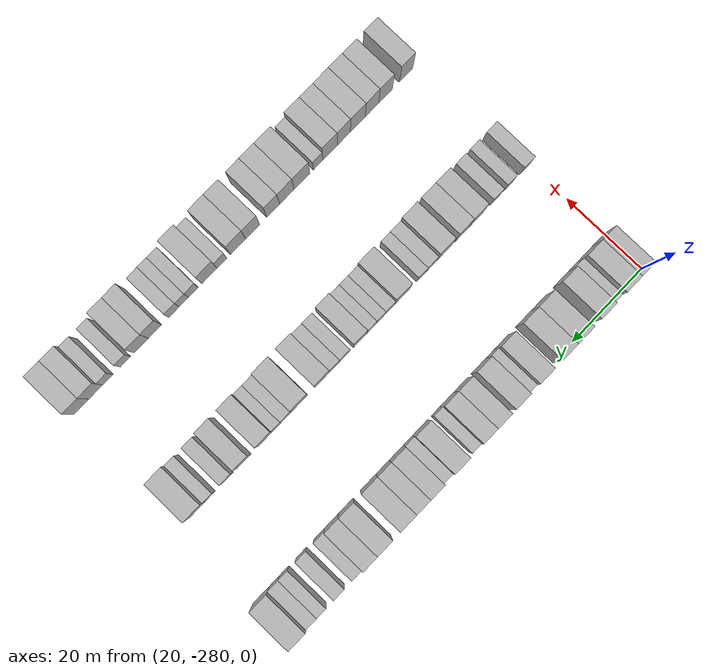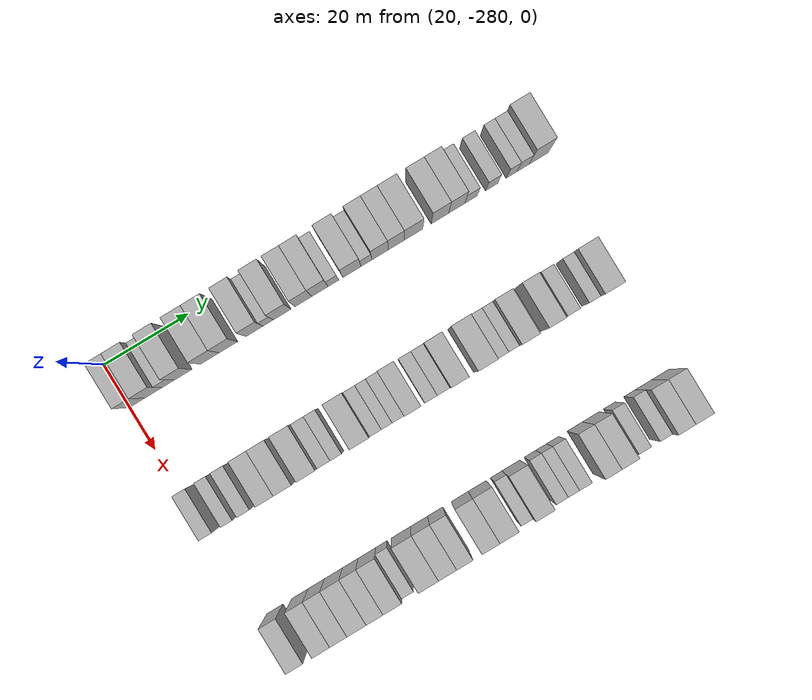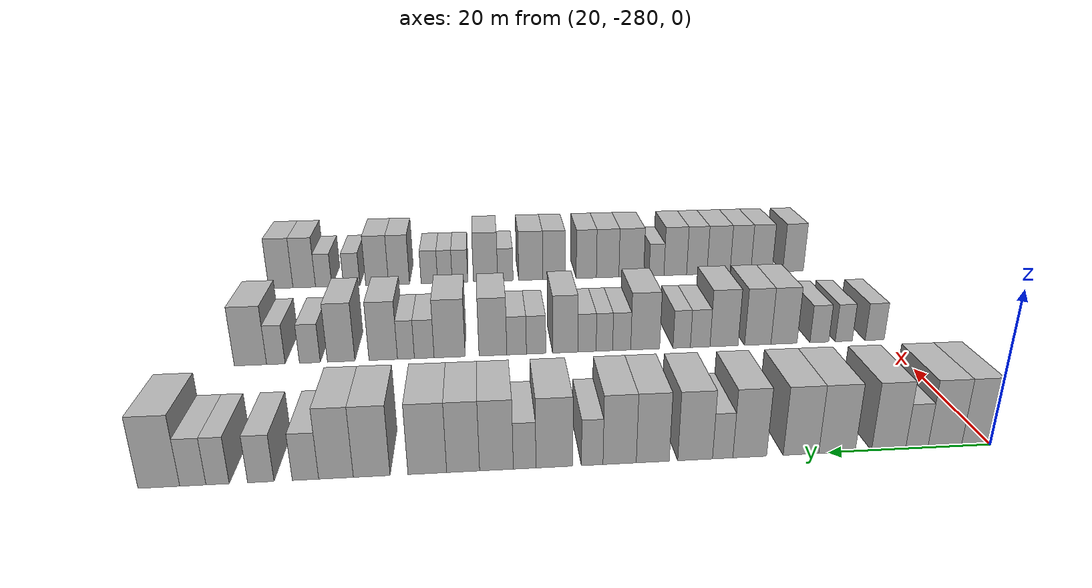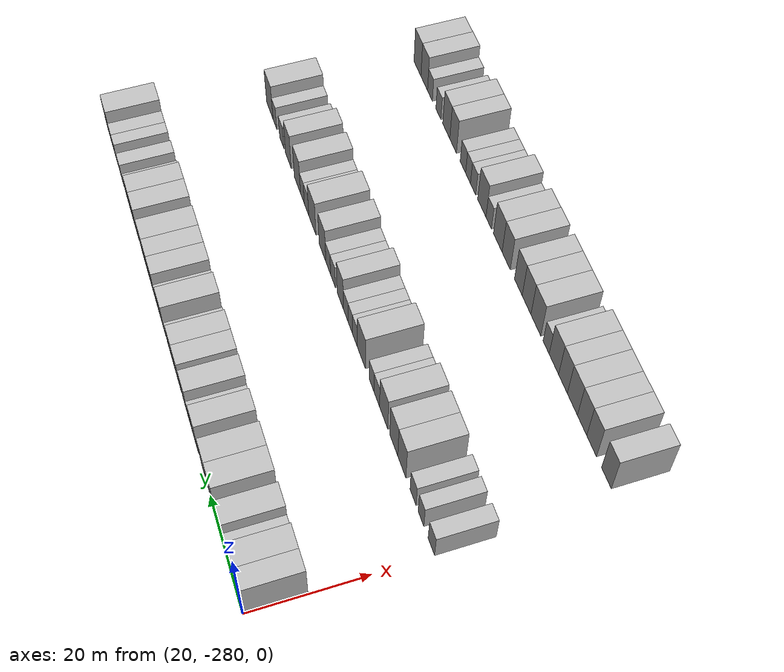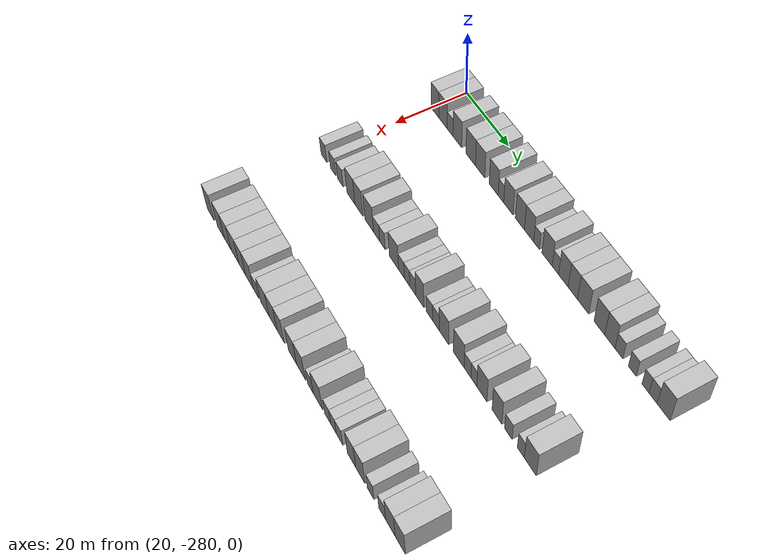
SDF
<sdf version="1.6">
 <world name="default">
  <model name="building_1">
   <static>1</static>
   <pose>25.0000 -278.1549 0 0.000000 0.000000 0.000000</pose>
   <link name="link">
    <pose>0 0 4.50 0 0 0</pose>
    <collision name="collision"><geometry><box><size>10.0000 3.6901 9.0000</size></box></geometry></collision>
    <visual name="visual">
     <cast_shadows>0</cast_shadows>
     <geometry><box><size>10.0000 3.6901 9.0000</size></box></geometry>
     <material>
      <script>
       <uri>model://HANNAS_wall/materials/scripts</uri>
       <uri>model://HANNAS_wall/materials/textures</uri>
       <name>vrc/HANNAS_wall</name>
      </script>
     </material>
    </visual>
   </link>
  </model>
  <model name="building_2">
   <static>1</static>
   <pose>25.0000 -274.2175 0 0.000000 0.000000 0.000000</pose>
   <link name="link">
    <pose>0 0 4.50 0 0 0</pose>
    <collision name="collision"><geometry><box><size>10.0000 4.1848 9.0000</size></box></geometry></collision>
    <visual name="visual">
     <cast_shadows>0</cast_shadows>
     <geometry><box><size>10.0000 4.1848 9.0000</size></box></geometry>
     <material>
      <script>
       <uri>model://HANNAS_wall/materials/scripts</uri>
       <uri>model://HANNAS_wall/materials/textures</uri>
       <name>vrc/HANNAS_wall</name>
      </script>
     </material>
    </visual>
   </link>
  </model>
  <model name="building_3">
   <static>1</static>
   <pose>25.0000 -270.7490 0 0.000000 0.000000 0.000000</pose>
   <link name="link">
    <pose>0 0 3.00 0 0 0</pose>
    <collision name="collision"><geometry><box><size>10.0000 2.7521 6.0000</size></box></geometry></collision>
    <visual name="visual">
     <cast_shadows>0</cast_shadows>
     <geometry><box><size>10.0000 2.7521 6.0000</size></box></geometry>
     <material>
      <script>
       <uri>model://HANNAS_wall/materials/scripts</uri>
       <uri>model://HANNAS_wall/materials/textures</uri>
       <name>vrc/HANNAS_wall</name>
      </script>
     </material>
    </visual>
   </link>
  </model>
  <model name="building_4">
   <static>1</static>
   <pose>25.0000 -267.2782 0 0.000000 0.000000 0.000000</pose>
   <link name="link">
    <pose>0 0 4.50 0 0 0</pose>
    <collision name="collision"><geometry><box><size>10.0000 4.1897 9.0000</size></box></geometry></collision>
    <visual name="visual">
     <cast_shadows>0</cast_shadows>
     <geometry><box><size>10.0000 4.1897 9.0000</size></box></geometry>
     <material>
      <script>
       <uri>model://HANNAS_wall/materials/scripts</uri>
       <uri>model://HANNAS_wall/materials/textures</uri>
       <name>vrc/HANNAS_wall</name>
      </script>
     </material>
    </visual>
   </link>
  </model>
  <model name="building_5">
   <static>1</static>
   <pose>25.0000 -260.9586 0 0.000000 0.000000 0.000000</pose>
   <link name="link">
    <pose>0 0 4.50 0 0 0</pose>
    <collision name="collision"><geometry><box><size>10.0000 4.4494 9.0000</size></box></geometry></collision>
    <visual name="visual">
     <cast_shadows>0</cast_shadows>
     <geometry><box><size>10.0000 4.4494 9.0000</size></box></geometry>
     <material>
      <script>
       <uri>model://HANNAS_wall/materials/scripts</uri>
       <uri>model://HANNAS_wall/materials/textures</uri>
       <name>vrc/HANNAS_wall</name>
      </script>
     </material>
    </visual>
   </link>
  </model>
  <model name="building_6">
   <static>1</static>
   <pose>25.0000 -256.5826 0 0.000000 0.000000 0.000000</pose>
   <link name="link">
    <pose>0 0 4.50 0 0 0</pose>
    <collision name="collision"><geometry><box><size>10.0000 4.3028 9.0000</size></box></geometry></collision>
    <visual name="visual">
     <cast_shadows>0</cast_shadows>
     <geometry><box><size>10.0000 4.3028 9.0000</size></box></geometry>
     <material>
      <script>
       <uri>model://HANNAS_wall/materials/scripts</uri>
       <uri>model://HANNAS_wall/materials/textures</uri>
       <name>vrc/HANNAS_wall</name>
      </script>
     </material>
    </visual>
   </link>
  </model>
  <model name="building_7">
   <static>1</static>
   <pose>25.0000 -250.4064 0 0.000000 0.000000 0.000000</pose>
   <link name="link">
    <pose>0 0 4.50 0 0 0</pose>
    <collision name="collision"><geometry><box><size>10.0000 4.0496 9.0000</size></box></geometry></collision>
    <visual name="visual">
     <cast_shadows>0</cast_shadows>
     <geometry><box><size>10.0000 4.0496 9.0000</size></box></geometry>
     <material>
      <script>
       <uri>model://HANNAS_wall/materials/scripts</uri>
       <uri>model://HANNAS_wall/materials/textures</uri>
       <name>vrc/HANNAS_wall</name>
      </script>
     </material>
    </visual>
   </link>
  </model>
  <model name="building_8">
   <static>1</static>
   <pose>25.0000 -247.1700 0 0.000000 0.000000 0.000000</pose>
   <link name="link">
    <pose>0 0 3.00 0 0 0</pose>
    <collision name="collision"><geometry><box><size>10.0000 2.4233 6.0000</size></box></geometry></collision>
    <visual name="visual">
     <cast_shadows>0</cast_shadows>
     <geometry><box><size>10.0000 2.4233 6.0000</size></box></geometry>
     <material>
      <script>
       <uri>model://HANNAS_wall/materials/scripts</uri>
       <uri>model://HANNAS_wall/materials/textures</uri>
       <name>vrc/HANNAS_wall</name>
      </script>
     </material>
    </visual>
   </link>
  </model>
  <model name="building_9">
   <static>1</static>
   <pose>25.0000 -243.8986 0 0.000000 0.000000 0.000000</pose>
   <link name="link">
    <pose>0 0 4.50 0 0 0</pose>
    <collision name="collision"><geometry><box><size>10.0000 4.1194 9.0000</size></box></geometry></collision>
    <visual name="visual">
     <cast_shadows>0</cast_shadows>
     <geometry><box><size>10.0000 4.1194 9.0000</size></box></geometry>
     <material>
      <script>
       <uri>model://HANNAS_wall/materials/scripts</uri>
       <uri>model://HANNAS_wall/materials/textures</uri>
       <name>vrc/HANNAS_wall</name>
      </script>
     </material>
    </visual>
   </link>
  </model>
  <model name="building_10">
   <static>1</static>
   <pose>25.0000 -238.8974 0 0.000000 0.000000 0.000000</pose>
   <link name="link">
    <pose>0 0 4.50 0 0 0</pose>
    <collision name="collision"><geometry><box><size>10.0000 3.8830 9.0000</size></box></geometry></collision>
    <visual name="visual">
     <cast_shadows>0</cast_shadows>
     <geometry><box><size>10.0000 3.8830 9.0000</size></box></geometry>
     <material>
      <script>
       <uri>model://HANNAS_wall/materials/scripts</uri>
       <uri>model://HANNAS_wall/materials/textures</uri>
       <name>vrc/HANNAS_wall</name>
      </script>
     </material>
    </visual>
   </link>
  </model>
  <model name="building_11">
   <static>1</static>
   <pose>25.0000 -235.0119 0 0.000000 0.000000 0.000000</pose>
   <link name="link">
    <pose>0 0 4.50 0 0 0</pose>
    <collision name="collision"><geometry><box><size>10.0000 3.8880 9.0000</size></box></geometry></collision>
    <visual name="visual">
     <cast_shadows>0</cast_shadows>
     <geometry><box><size>10.0000 3.8880 9.0000</size></box></geometry>
     <material>
      <script>
       <uri>model://HANNAS_wall/materials/scripts</uri>
       <uri>model://HANNAS_wall/materials/textures</uri>
       <name>vrc/HANNAS_wall</name>
      </script>
     </material>
    </visual>
   </link>
  </model>
  <model name="building_12">
   <static>1</static>
   <pose>25.0000 -231.8166 0 0.000000 0.000000 0.000000</pose>
   <link name="link">
    <pose>0 0 3.00 0 0 0</pose>
    <collision name="collision"><geometry><box><size>10.0000 2.5026 6.0000</size></box></geometry></collision>
    <visual name="visual">
     <cast_shadows>0</cast_shadows>
     <geometry><box><size>10.0000 2.5026 6.0000</size></box></geometry>
     <material>
      <script>
       <uri>model://HANNAS_wall/materials/scripts</uri>
       <uri>model://HANNAS_wall/materials/textures</uri>
       <name>vrc/HANNAS_wall</name>
      </script>
     </material>
    </visual>
   </link>
  </model>
  <model name="building_13">
   <static>1</static>
   <pose>25.0000 -227.4403 0 0.000000 0.000000 0.000000</pose>
   <link name="link">
    <pose>0 0 4.50 0 0 0</pose>
    <collision name="collision"><geometry><box><size>10.0000 4.2500 9.0000</size></box></geometry></collision>
    <visual name="visual">
     <cast_shadows>0</cast_shadows>
     <geometry><box><size>10.0000 4.2500 9.0000</size></box></geometry>
     <material>
      <script>
       <uri>model://HANNAS_wall/materials/scripts</uri>
       <uri>model://HANNAS_wall/materials/textures</uri>
       <name>vrc/HANNAS_wall</name>
      </script>
     </material>
    </visual>
   </link>
  </model>
  <model name="building_14">
   <static>1</static>
   <pose>25.0000 -224.0164 0 0.000000 0.000000 0.000000</pose>
   <link name="link">
    <pose>0 0 3.00 0 0 0</pose>
    <collision name="collision"><geometry><box><size>10.0000 2.5977 6.0000</size></box></geometry></collision>
    <visual name="visual">
     <cast_shadows>0</cast_shadows>
     <geometry><box><size>10.0000 2.5977 6.0000</size></box></geometry>
     <material>
      <script>
       <uri>model://HANNAS_wall/materials/scripts</uri>
       <uri>model://HANNAS_wall/materials/textures</uri>
       <name>vrc/HANNAS_wall</name>
      </script>
     </material>
    </visual>
   </link>
  </model>
  <model name="building_15">
   <static>1</static>
   <pose>25.0000 -220.7955 0 0.000000 0.000000 0.000000</pose>
   <link name="link">
    <pose>0 0 4.50 0 0 0</pose>
    <collision name="collision"><geometry><box><size>10.0000 3.8441 9.0000</size></box></geometry></collision>
    <visual name="visual">
     <cast_shadows>0</cast_shadows>
     <geometry><box><size>10.0000 3.8441 9.0000</size></box></geometry>
     <material>
      <script>
       <uri>model://HANNAS_wall/materials/scripts</uri>
       <uri>model://HANNAS_wall/materials/textures</uri>
       <name>vrc/HANNAS_wall</name>
      </script>
     </material>
    </visual>
   </link>
  </model>
  <model name="building_16">
   <static>1</static>
   <pose>25.0000 -217.0049 0 0.000000 0.000000 0.000000</pose>
   <link name="link">
    <pose>0 0 4.50 0 0 0</pose>
    <collision name="collision"><geometry><box><size>10.0000 3.7371 9.0000</size></box></geometry></collision>
    <visual name="visual">
     <cast_shadows>0</cast_shadows>
     <geometry><box><size>10.0000 3.7371 9.0000</size></box></geometry>
     <material>
      <script>
       <uri>model://HANNAS_wall/materials/scripts</uri>
       <uri>model://HANNAS_wall/materials/textures</uri>
       <name>vrc/HANNAS_wall</name>
      </script>
     </material>
    </visual>
   </link>
  </model>
  <model name="building_17">
   <static>1</static>
   <pose>25.0000 -212.9558 0 0.000000 0.000000 0.000000</pose>
   <link name="link">
    <pose>0 0 4.50 0 0 0</pose>
    <collision name="collision"><geometry><box><size>10.0000 4.3610 9.0000</size></box></geometry></collision>
    <visual name="visual">
     <cast_shadows>0</cast_shadows>
     <geometry><box><size>10.0000 4.3610 9.0000</size></box></geometry>
     <material>
      <script>
       <uri>model://HANNAS_wall/materials/scripts</uri>
       <uri>model://HANNAS_wall/materials/textures</uri>
       <name>vrc/HANNAS_wall</name>
      </script>
     </material>
    </visual>
   </link>
  </model>
  <model name="building_18">
   <static>1</static>
   <pose>25.0000 -206.7280 0 0.000000 0.000000 0.000000</pose>
   <link name="link">
    <pose>0 0 4.50 0 0 0</pose>
    <collision name="collision"><geometry><box><size>10.0000 4.0947 9.0000</size></box></geometry></collision>
    <visual name="visual">
     <cast_shadows>0</cast_shadows>
     <geometry><box><size>10.0000 4.0947 9.0000</size></box></geometry>
     <material>
      <script>
       <uri>model://HANNAS_wall/materials/scripts</uri>
       <uri>model://HANNAS_wall/materials/textures</uri>
       <name>vrc/HANNAS_wall</name>
      </script>
     </material>
    </visual>
   </link>
  </model>
  <model name="building_19">
   <static>1</static>
   <pose>25.0000 -202.7622 0 0.000000 0.000000 0.000000</pose>
   <link name="link">
    <pose>0 0 4.50 0 0 0</pose>
    <collision name="collision"><geometry><box><size>10.0000 3.8369 9.0000</size></box></geometry></collision>
    <visual name="visual">
     <cast_shadows>0</cast_shadows>
     <geometry><box><size>10.0000 3.8369 9.0000</size></box></geometry>
     <material>
      <script>
       <uri>model://HANNAS_wall/materials/scripts</uri>
       <uri>model://HANNAS_wall/materials/textures</uri>
       <name>vrc/HANNAS_wall</name>
      </script>
     </material>
    </visual>
   </link>
  </model>
  <model name="building_20">
   <static>1</static>
   <pose>25.0000 -199.3915 0 0.000000 0.000000 0.000000</pose>
   <link name="link">
    <pose>0 0 3.00 0 0 0</pose>
    <collision name="collision"><geometry><box><size>10.0000 2.9047 6.0000</size></box></geometry></collision>
    <visual name="visual">
     <cast_shadows>0</cast_shadows>
     <geometry><box><size>10.0000 2.9047 6.0000</size></box></geometry>
     <material>
      <script>
       <uri>model://HANNAS_wall/materials/scripts</uri>
       <uri>model://HANNAS_wall/materials/textures</uri>
       <name>vrc/HANNAS_wall</name>
      </script>
     </material>
    </visual>
   </link>
  </model>
  <model name="building_21">
   <static>1</static>
   <pose>25.0000 -194.4979 0 0.000000 0.000000 0.000000</pose>
   <link name="link">
    <pose>0 0 3.00 0 0 0</pose>
    <collision name="collision"><geometry><box><size>10.0000 2.8824 6.0000</size></box></geometry></collision>
    <visual name="visual">
     <cast_shadows>0</cast_shadows>
     <geometry><box><size>10.0000 2.8824 6.0000</size></box></geometry>
     <material>
      <script>
       <uri>model://HANNAS_wall/materials/scripts</uri>
       <uri>model://HANNAS_wall/materials/textures</uri>
       <name>vrc/HANNAS_wall</name>
      </script>
     </material>
    </visual>
   </link>
  </model>
  <model name="building_22">
   <static>1</static>
   <pose>25.0000 -189.7971 0 0.000000 0.000000 0.000000</pose>
   <link name="link">
    <pose>0 0 3.00 0 0 0</pose>
    <collision name="collision"><geometry><box><size>10.0000 2.5194 6.0000</size></box></geometry></collision>
    <visual name="visual">
     <cast_shadows>0</cast_shadows>
     <geometry><box><size>10.0000 2.5194 6.0000</size></box></geometry>
     <material>
      <script>
       <uri>model://HANNAS_wall/materials/scripts</uri>
       <uri>model://HANNAS_wall/materials/textures</uri>
       <name>vrc/HANNAS_wall</name>
      </script>
     </material>
    </visual>
   </link>
  </model>
  <model name="building_23">
   <static>1</static>
   <pose>25.0000 -187.1224 0 0.000000 0.000000 0.000000</pose>
   <link name="link">
    <pose>0 0 3.00 0 0 0</pose>
    <collision name="collision"><geometry><box><size>10.0000 2.8300 6.0000</size></box></geometry></collision>
    <visual name="visual">
     <cast_shadows>0</cast_shadows>
     <geometry><box><size>10.0000 2.8300 6.0000</size></box></geometry>
     <material>
      <script>
       <uri>model://HANNAS_wall/materials/scripts</uri>
       <uri>model://HANNAS_wall/materials/textures</uri>
       <name>vrc/HANNAS_wall</name>
      </script>
     </material>
    </visual>
   </link>
  </model>
  <model name="building_24">
   <static>1</static>
   <pose>25.0000 -183.4725 0 0.000000 0.000000 0.000000</pose>
   <link name="link">
    <pose>0 0 4.50 0 0 0</pose>
    <collision name="collision"><geometry><box><size>10.0000 4.4697 9.0000</size></box></geometry></collision>
    <visual name="visual">
     <cast_shadows>0</cast_shadows>
     <geometry><box><size>10.0000 4.4697 9.0000</size></box></geometry>
     <material>
      <script>
       <uri>model://HANNAS_wall/materials/scripts</uri>
       <uri>model://HANNAS_wall/materials/textures</uri>
       <name>vrc/HANNAS_wall</name>
      </script>
     </material>
    </visual>
   </link>
  </model>
  <model name="building_139">
   <static>1</static>
   <pose>55.0000 -278.5153 0 0.000000 0.000000 0.000000</pose>
   <link name="link">
    <pose>0 0 3.00 0 0 0</pose>
    <collision name="collision"><geometry><box><size>10.0000 2.9694 6.0000</size></box></geometry></collision>
    <visual name="visual">
     <cast_shadows>0</cast_shadows>
     <geometry><box><size>10.0000 2.9694 6.0000</size></box></geometry>
     <material>
      <script>
       <uri>model://HANNAS_wall/materials/scripts</uri>
       <uri>model://HANNAS_wall/materials/textures</uri>
       <name>vrc/HANNAS_wall</name>
      </script>
     </material>
    </visual>
   </link>
  </model>
  <model name="building_140">
   <static>1</static>
   <pose>55.0000 -273.6998 0 0.000000 0.000000 0.000000</pose>
   <link name="link">
    <pose>0 0 3.00 0 0 0</pose>
    <collision name="collision"><geometry><box><size>10.0000 2.6615 6.0000</size></box></geometry></collision>
    <visual name="visual">
     <cast_shadows>0</cast_shadows>
     <geometry><box><size>10.0000 2.6615 6.0000</size></box></geometry>
     <material>
      <script>
       <uri>model://HANNAS_wall/materials/scripts</uri>
       <uri>model://HANNAS_wall/materials/textures</uri>
       <name>vrc/HANNAS_wall</name>
      </script>
     </material>
    </visual>
   </link>
  </model>
  <model name="building_141">
   <static>1</static>
   <pose>55.0000 -269.9161 0 0.000000 0.000000 0.000000</pose>
   <link name="link">
    <pose>0 0 3.00 0 0 0</pose>
    <collision name="collision"><geometry><box><size>10.0000 2.9060 6.0000</size></box></geometry></collision>
    <visual name="visual">
     <cast_shadows>0</cast_shadows>
     <geometry><box><size>10.0000 2.9060 6.0000</size></box></geometry>
     <material>
      <script>
       <uri>model://HANNAS_wall/materials/scripts</uri>
       <uri>model://HANNAS_wall/materials/textures</uri>
       <name>vrc/HANNAS_wall</name>
      </script>
     </material>
    </visual>
   </link>
  </model>
  <model name="building_142">
   <static>1</static>
   <pose>55.0000 -264.4637 0 0.000000 0.000000 0.000000</pose>
   <link name="link">
    <pose>0 0 4.50 0 0 0</pose>
    <collision name="collision"><geometry><box><size>10.0000 3.9988 9.0000</size></box></geometry></collision>
    <visual name="visual">
     <cast_shadows>0</cast_shadows>
     <geometry><box><size>10.0000 3.9988 9.0000</size></box></geometry>
     <material>
      <script>
       <uri>model://HANNAS_wall/materials/scripts</uri>
       <uri>model://HANNAS_wall/materials/textures</uri>
       <name>vrc/HANNAS_wall</name>
      </script>
     </material>
    </visual>
   </link>
  </model>
  <model name="building_143">
   <static>1</static>
   <pose>55.0000 -260.4522 0 0.000000 0.000000 0.000000</pose>
   <link name="link">
    <pose>0 0 4.50 0 0 0</pose>
    <collision name="collision"><geometry><box><size>10.0000 4.0242 9.0000</size></box></geometry></collision>
    <visual name="visual">
     <cast_shadows>0</cast_shadows>
     <geometry><box><size>10.0000 4.0242 9.0000</size></box></geometry>
     <material>
      <script>
       <uri>model://HANNAS_wall/materials/scripts</uri>
       <uri>model://HANNAS_wall/materials/textures</uri>
       <name>vrc/HANNAS_wall</name>
      </script>
     </material>
    </visual>
   </link>
  </model>
  <model name="building_144">
   <static>1</static>
   <pose>55.0000 -255.3113 0 0.000000 0.000000 0.000000</pose>
   <link name="link">
    <pose>0 0 4.50 0 0 0</pose>
    <collision name="collision"><geometry><box><size>10.0000 4.2575 9.0000</size></box></geometry></collision>
    <visual name="visual">
     <cast_shadows>0</cast_shadows>
     <geometry><box><size>10.0000 4.2575 9.0000</size></box></geometry>
     <material>
      <script>
       <uri>model://HANNAS_wall/materials/scripts</uri>
       <uri>model://HANNAS_wall/materials/textures</uri>
       <name>vrc/HANNAS_wall</name>
      </script>
     </material>
    </visual>
   </link>
  </model>
  <model name="building_145">
   <static>1</static>
   <pose>55.0000 -251.6999 0 0.000000 0.000000 0.000000</pose>
   <link name="link">
    <pose>0 0 3.00 0 0 0</pose>
    <collision name="collision"><geometry><box><size>10.0000 2.9653 6.0000</size></box></geometry></collision>
    <visual name="visual">
     <cast_shadows>0</cast_shadows>
     <geometry><box><size>10.0000 2.9653 6.0000</size></box></geometry>
     <material>
      <script>
       <uri>model://HANNAS_wall/materials/scripts</uri>
       <uri>model://HANNAS_wall/materials/textures</uri>
       <name>vrc/HANNAS_wall</name>
      </script>
     </material>
    </visual>
   </link>
  </model>
  <model name="building_146">
   <static>1</static>
   <pose>55.0000 -248.9101 0 0.000000 0.000000 0.000000</pose>
   <link name="link">
    <pose>0 0 3.00 0 0 0</pose>
    <collision name="collision"><geometry><box><size>10.0000 2.6144 6.0000</size></box></geometry></collision>
    <visual name="visual">
     <cast_shadows>0</cast_shadows>
     <geometry><box><size>10.0000 2.6144 6.0000</size></box></geometry>
     <material>
      <script>
       <uri>model://HANNAS_wall/materials/scripts</uri>
       <uri>model://HANNAS_wall/materials/textures</uri>
       <name>vrc/HANNAS_wall</name>
      </script>
     </material>
    </visual>
   </link>
  </model>
  <model name="building_147">
   <static>1</static>
   <pose>55.0000 -243.4401 0 0.000000 0.000000 0.000000</pose>
   <link name="link">
    <pose>0 0 4.50 0 0 0</pose>
    <collision name="collision"><geometry><box><size>10.0000 4.3257 9.0000</size></box></geometry></collision>
    <visual name="visual">
     <cast_shadows>0</cast_shadows>
     <geometry><box><size>10.0000 4.3257 9.0000</size></box></geometry>
     <material>
      <script>
       <uri>model://HANNAS_wall/materials/scripts</uri>
       <uri>model://HANNAS_wall/materials/textures</uri>
       <name>vrc/HANNAS_wall</name>
      </script>
     </material>
    </visual>
   </link>
  </model>
  <model name="building_148">
   <static>1</static>
   <pose>55.0000 -239.9312 0 0.000000 0.000000 0.000000</pose>
   <link name="link">
    <pose>0 0 3.00 0 0 0</pose>
    <collision name="collision"><geometry><box><size>10.0000 2.6922 6.0000</size></box></geometry></collision>
    <visual name="visual">
     <cast_shadows>0</cast_shadows>
     <geometry><box><size>10.0000 2.6922 6.0000</size></box></geometry>
     <material>
      <script>
       <uri>model://HANNAS_wall/materials/scripts</uri>
       <uri>model://HANNAS_wall/materials/textures</uri>
       <name>vrc/HANNAS_wall</name>
      </script>
     </material>
    </visual>
   </link>
  </model>
  <model name="building_149">
   <static>1</static>
   <pose>55.0000 -237.3634 0 0.000000 0.000000 0.000000</pose>
   <link name="link">
    <pose>0 0 3.00 0 0 0</pose>
    <collision name="collision"><geometry><box><size>10.0000 2.4433 6.0000</size></box></geometry></collision>
    <visual name="visual">
     <cast_shadows>0</cast_shadows>
     <geometry><box><size>10.0000 2.4433 6.0000</size></box></geometry>
     <material>
      <script>
       <uri>model://HANNAS_wall/materials/scripts</uri>
       <uri>model://HANNAS_wall/materials/textures</uri>
       <name>vrc/HANNAS_wall</name>
      </script>
     </material>
    </visual>
   </link>
  </model>
  <model name="building_150">
   <static>1</static>
   <pose>55.0000 -234.7856 0 0.000000 0.000000 0.000000</pose>
   <link name="link">
    <pose>0 0 3.00 0 0 0</pose>
    <collision name="collision"><geometry><box><size>10.0000 2.7123 6.0000</size></box></geometry></collision>
    <visual name="visual">
     <cast_shadows>0</cast_shadows>
     <geometry><box><size>10.0000 2.7123 6.0000</size></box></geometry>
     <material>
      <script>
       <uri>model://HANNAS_wall/materials/scripts</uri>
       <uri>model://HANNAS_wall/materials/textures</uri>
       <name>vrc/HANNAS_wall</name>
      </script>
     </material>
    </visual>
   </link>
  </model>
  <model name="building_151">
   <static>1</static>
   <pose>55.0000 -231.5800 0 0.000000 0.000000 0.000000</pose>
   <link name="link">
    <pose>0 0 4.50 0 0 0</pose>
    <collision name="collision"><geometry><box><size>10.0000 3.6989 9.0000</size></box></geometry></collision>
    <visual name="visual">
     <cast_shadows>0</cast_shadows>
     <geometry><box><size>10.0000 3.6989 9.0000</size></box></geometry>
     <material>
      <script>
       <uri>model://HANNAS_wall/materials/scripts</uri>
       <uri>model://HANNAS_wall/materials/textures</uri>
       <name>vrc/HANNAS_wall</name>
      </script>
     </material>
    </visual>
   </link>
  </model>
  <model name="building_152">
   <static>1</static>
   <pose>55.0000 -227.3131 0 0.000000 0.000000 0.000000</pose>
   <link name="link">
    <pose>0 0 3.00 0 0 0</pose>
    <collision name="collision"><geometry><box><size>10.0000 2.8349 6.0000</size></box></geometry></collision>
    <visual name="visual">
     <cast_shadows>0</cast_shadows>
     <geometry><box><size>10.0000 2.8349 6.0000</size></box></geometry>
     <material>
      <script>
       <uri>model://HANNAS_wall/materials/scripts</uri>
       <uri>model://HANNAS_wall/materials/textures</uri>
       <name>vrc/HANNAS_wall</name>
      </script>
     </material>
    </visual>
   </link>
  </model>
  <model name="building_153">
   <static>1</static>
   <pose>55.0000 -224.4681 0 0.000000 0.000000 0.000000</pose>
   <link name="link">
    <pose>0 0 3.00 0 0 0</pose>
    <collision name="collision"><geometry><box><size>10.0000 2.8550 6.0000</size></box></geometry></collision>
    <visual name="visual">
     <cast_shadows>0</cast_shadows>
     <geometry><box><size>10.0000 2.8550 6.0000</size></box></geometry>
     <material>
      <script>
       <uri>model://HANNAS_wall/materials/scripts</uri>
       <uri>model://HANNAS_wall/materials/textures</uri>
       <name>vrc/HANNAS_wall</name>
      </script>
     </material>
    </visual>
   </link>
  </model>
  <model name="building_154">
   <static>1</static>
   <pose>55.0000 -221.0236 0 0.000000 0.000000 0.000000</pose>
   <link name="link">
    <pose>0 0 4.50 0 0 0</pose>
    <collision name="collision"><geometry><box><size>10.0000 4.0340 9.0000</size></box></geometry></collision>
    <visual name="visual">
     <cast_shadows>0</cast_shadows>
     <geometry><box><size>10.0000 4.0340 9.0000</size></box></geometry>
     <material>
      <script>
       <uri>model://HANNAS_wall/materials/scripts</uri>
       <uri>model://HANNAS_wall/materials/textures</uri>
       <name>vrc/HANNAS_wall</name>
      </script>
     </material>
    </visual>
   </link>
  </model>
  <model name="building_155">
   <static>1</static>
   <pose>55.0000 -214.7697 0 0.000000 0.000000 0.000000</pose>
   <link name="link">
    <pose>0 0 4.50 0 0 0</pose>
    <collision name="collision"><geometry><box><size>10.0000 4.4740 9.0000</size></box></geometry></collision>
    <visual name="visual">
     <cast_shadows>0</cast_shadows>
     <geometry><box><size>10.0000 4.4740 9.0000</size></box></geometry>
     <material>
      <script>
       <uri>model://HANNAS_wall/materials/scripts</uri>
       <uri>model://HANNAS_wall/materials/textures</uri>
       <name>vrc/HANNAS_wall</name>
      </script>
     </material>
    </visual>
   </link>
  </model>
  <model name="building_156">
   <static>1</static>
   <pose>55.0000 -211.1224 0 0.000000 0.000000 0.000000</pose>
   <link name="link">
    <pose>0 0 3.00 0 0 0</pose>
    <collision name="collision"><geometry><box><size>10.0000 2.8205 6.0000</size></box></geometry></collision>
    <visual name="visual">
     <cast_shadows>0</cast_shadows>
     <geometry><box><size>10.0000 2.8205 6.0000</size></box></geometry>
     <material>
      <script>
       <uri>model://HANNAS_wall/materials/scripts</uri>
       <uri>model://HANNAS_wall/materials/textures</uri>
       <name>vrc/HANNAS_wall</name>
      </script>
     </material>
    </visual>
   </link>
  </model>
  <model name="building_157">
   <static>1</static>
   <pose>55.0000 -208.5055 0 0.000000 0.000000 0.000000</pose>
   <link name="link">
    <pose>0 0 3.00 0 0 0</pose>
    <collision name="collision"><geometry><box><size>10.0000 2.4133 6.0000</size></box></geometry></collision>
    <visual name="visual">
     <cast_shadows>0</cast_shadows>
     <geometry><box><size>10.0000 2.4133 6.0000</size></box></geometry>
     <material>
      <script>
       <uri>model://HANNAS_wall/materials/scripts</uri>
       <uri>model://HANNAS_wall/materials/textures</uri>
       <name>vrc/HANNAS_wall</name>
      </script>
     </material>
    </visual>
   </link>
  </model>
  <model name="building_158">
   <static>1</static>
   <pose>55.0000 -205.2752 0 0.000000 0.000000 0.000000</pose>
   <link name="link">
    <pose>0 0 4.50 0 0 0</pose>
    <collision name="collision"><geometry><box><size>10.0000 4.0474 9.0000</size></box></geometry></collision>
    <visual name="visual">
     <cast_shadows>0</cast_shadows>
     <geometry><box><size>10.0000 4.0474 9.0000</size></box></geometry>
     <material>
      <script>
       <uri>model://HANNAS_wall/materials/scripts</uri>
       <uri>model://HANNAS_wall/materials/textures</uri>
       <name>vrc/HANNAS_wall</name>
      </script>
     </material>
    </visual>
   </link>
  </model>
  <model name="building_159">
   <static>1</static>
   <pose>55.0000 -199.3137 0 0.000000 0.000000 0.000000</pose>
   <link name="link">
    <pose>0 0 4.50 0 0 0</pose>
    <collision name="collision"><geometry><box><size>10.0000 3.8756 9.0000</size></box></geometry></collision>
    <visual name="visual">
     <cast_shadows>0</cast_shadows>
     <geometry><box><size>10.0000 3.8756 9.0000</size></box></geometry>
     <material>
      <script>
       <uri>model://HANNAS_wall/materials/scripts</uri>
       <uri>model://HANNAS_wall/materials/textures</uri>
       <name>vrc/HANNAS_wall</name>
      </script>
     </material>
    </visual>
   </link>
  </model>
  <model name="building_160">
   <static>1</static>
   <pose>55.0000 -194.9148 0 0.000000 0.000000 0.000000</pose>
   <link name="link">
    <pose>0 0 3.00 0 0 0</pose>
    <collision name="collision"><geometry><box><size>10.0000 2.9221 6.0000</size></box></geometry></collision>
    <visual name="visual">
     <cast_shadows>0</cast_shadows>
     <geometry><box><size>10.0000 2.9221 6.0000</size></box></geometry>
     <material>
      <script>
       <uri>model://HANNAS_wall/materials/scripts</uri>
       <uri>model://HANNAS_wall/materials/textures</uri>
       <name>vrc/HANNAS_wall</name>
      </script>
     </material>
    </visual>
   </link>
  </model>
  <model name="building_161">
   <static>1</static>
   <pose>55.0000 -190.1659 0 0.000000 0.000000 0.000000</pose>
   <link name="link">
    <pose>0 0 3.00 0 0 0</pose>
    <collision name="collision"><geometry><box><size>10.0000 2.5759 6.0000</size></box></geometry></collision>
    <visual name="visual">
     <cast_shadows>0</cast_shadows>
     <geometry><box><size>10.0000 2.5759 6.0000</size></box></geometry>
     <material>
      <script>
       <uri>model://HANNAS_wall/materials/scripts</uri>
       <uri>model://HANNAS_wall/materials/textures</uri>
       <name>vrc/HANNAS_wall</name>
      </script>
     </material>
    </visual>
   </link>
  </model>
  <model name="building_162">
   <static>1</static>
   <pose>55.0000 -186.6361 0 0.000000 0.000000 0.000000</pose>
   <link name="link">
    <pose>0 0 4.50 0 0 0</pose>
    <collision name="collision"><geometry><box><size>10.0000 4.4837 9.0000</size></box></geometry></collision>
    <visual name="visual">
     <cast_shadows>0</cast_shadows>
     <geometry><box><size>10.0000 4.4837 9.0000</size></box></geometry>
     <material>
      <script>
       <uri>model://HANNAS_wall/materials/scripts</uri>
       <uri>model://HANNAS_wall/materials/textures</uri>
       <name>vrc/HANNAS_wall</name>
      </script>
     </material>
    </visual>
   </link>
  </model>
  <model name="building_281">
   <static>1</static>
   <pose>85.0000 -276.0849 0 0.000000 0.000000 0.000000</pose>
   <link name="link">
    <pose>0 0 4.50 0 0 0</pose>
    <collision name="collision"><geometry><box><size>10.0000 3.8302 9.0000</size></box></geometry></collision>
    <visual name="visual">
     <cast_shadows>0</cast_shadows>
     <geometry><box><size>10.0000 3.8302 9.0000</size></box></geometry>
     <material>
      <script>
       <uri>model://HANNAS_wall/materials/scripts</uri>
       <uri>model://HANNAS_wall/materials/textures</uri>
       <name>vrc/HANNAS_wall</name>
      </script>
     </material>
    </visual>
   </link>
  </model>
  <model name="building_282">
   <static>1</static>
   <pose>85.0000 -270.1934 0 0.000000 0.000000 0.000000</pose>
   <link name="link">
    <pose>0 0 4.50 0 0 0</pose>
    <collision name="collision"><geometry><box><size>10.0000 3.9529 9.0000</size></box></geometry></collision>
    <visual name="visual">
     <cast_shadows>0</cast_shadows>
     <geometry><box><size>10.0000 3.9529 9.0000</size></box></geometry>
     <material>
      <script>
       <uri>model://HANNAS_wall/materials/scripts</uri>
       <uri>model://HANNAS_wall/materials/textures</uri>
       <name>vrc/HANNAS_wall</name>
      </script>
     </material>
    </visual>
   </link>
  </model>
  <model name="building_283">
   <static>1</static>
   <pose>85.0000 -266.3004 0 0.000000 0.000000 0.000000</pose>
   <link name="link">
    <pose>0 0 4.50 0 0 0</pose>
    <collision name="collision"><geometry><box><size>10.0000 3.8330 9.0000</size></box></geometry></collision>
    <visual name="visual">
     <cast_shadows>0</cast_shadows>
     <geometry><box><size>10.0000 3.8330 9.0000</size></box></geometry>
     <material>
      <script>
       <uri>model://HANNAS_wall/materials/scripts</uri>
       <uri>model://HANNAS_wall/materials/textures</uri>
       <name>vrc/HANNAS_wall</name>
      </script>
     </material>
    </visual>
   </link>
  </model>
  <model name="building_284">
   <static>1</static>
   <pose>85.0000 -262.2619 0 0.000000 0.000000 0.000000</pose>
   <link name="link">
    <pose>0 0 4.50 0 0 0</pose>
    <collision name="collision"><geometry><box><size>10.0000 4.2441 9.0000</size></box></geometry></collision>
    <visual name="visual">
     <cast_shadows>0</cast_shadows>
     <geometry><box><size>10.0000 4.2441 9.0000</size></box></geometry>
     <material>
      <script>
       <uri>model://HANNAS_wall/materials/scripts</uri>
       <uri>model://HANNAS_wall/materials/textures</uri>
       <name>vrc/HANNAS_wall</name>
      </script>
     </material>
    </visual>
   </link>
  </model>
  <model name="building_285">
   <static>1</static>
   <pose>85.0000 -258.2715 0 0.000000 0.000000 0.000000</pose>
   <link name="link">
    <pose>0 0 4.50 0 0 0</pose>
    <collision name="collision"><geometry><box><size>10.0000 3.7367 9.0000</size></box></geometry></collision>
    <visual name="visual">
     <cast_shadows>0</cast_shadows>
     <geometry><box><size>10.0000 3.7367 9.0000</size></box></geometry>
     <material>
      <script>
       <uri>model://HANNAS_wall/materials/scripts</uri>
       <uri>model://HANNAS_wall/materials/textures</uri>
       <name>vrc/HANNAS_wall</name>
      </script>
     </material>
    </visual>
   </link>
  </model>
  <model name="building_286">
   <static>1</static>
   <pose>85.0000 -254.3383 0 0.000000 0.000000 0.000000</pose>
   <link name="link">
    <pose>0 0 4.50 0 0 0</pose>
    <collision name="collision"><geometry><box><size>10.0000 4.1298 9.0000</size></box></geometry></collision>
    <visual name="visual">
     <cast_shadows>0</cast_shadows>
     <geometry><box><size>10.0000 4.1298 9.0000</size></box></geometry>
     <material>
      <script>
       <uri>model://HANNAS_wall/materials/scripts</uri>
       <uri>model://HANNAS_wall/materials/textures</uri>
       <name>vrc/HANNAS_wall</name>
      </script>
     </material>
    </visual>
   </link>
  </model>
  <model name="building_287">
   <static>1</static>
   <pose>85.0000 -250.9279 0 0.000000 0.000000 0.000000</pose>
   <link name="link">
    <pose>0 0 3.00 0 0 0</pose>
    <collision name="collision"><geometry><box><size>10.0000 2.6910 6.0000</size></box></geometry></collision>
    <visual name="visual">
     <cast_shadows>0</cast_shadows>
     <geometry><box><size>10.0000 2.6910 6.0000</size></box></geometry>
     <material>
      <script>
       <uri>model://HANNAS_wall/materials/scripts</uri>
       <uri>model://HANNAS_wall/materials/textures</uri>
       <name>vrc/HANNAS_wall</name>
      </script>
     </material>
    </visual>
   </link>
  </model>
  <model name="building_288">
   <static>1</static>
   <pose>85.0000 -246.3416 0 0.000000 0.000000 0.000000</pose>
   <link name="link">
    <pose>0 0 4.50 0 0 0</pose>
    <collision name="collision"><geometry><box><size>10.0000 4.4815 9.0000</size></box></geometry></collision>
    <visual name="visual">
     <cast_shadows>0</cast_shadows>
     <geometry><box><size>10.0000 4.4815 9.0000</size></box></geometry>
     <material>
      <script>
       <uri>model://HANNAS_wall/materials/scripts</uri>
       <uri>model://HANNAS_wall/materials/textures</uri>
       <name>vrc/HANNAS_wall</name>
      </script>
     </material>
    </visual>
   </link>
  </model>
  <model name="building_289">
   <static>1</static>
   <pose>85.0000 -242.0796 0 0.000000 0.000000 0.000000</pose>
   <link name="link">
    <pose>0 0 4.50 0 0 0</pose>
    <collision name="collision"><geometry><box><size>10.0000 4.0425 9.0000</size></box></geometry></collision>
    <visual name="visual">
     <cast_shadows>0</cast_shadows>
     <geometry><box><size>10.0000 4.0425 9.0000</size></box></geometry>
     <material>
      <script>
       <uri>model://HANNAS_wall/materials/scripts</uri>
       <uri>model://HANNAS_wall/materials/textures</uri>
       <name>vrc/HANNAS_wall</name>
      </script>
     </material>
    </visual>
   </link>
  </model>
  <model name="building_290">
   <static>1</static>
   <pose>85.0000 -238.2517 0 0.000000 0.000000 0.000000</pose>
   <link name="link">
    <pose>0 0 4.50 0 0 0</pose>
    <collision name="collision"><geometry><box><size>10.0000 3.6134 9.0000</size></box></geometry></collision>
    <visual name="visual">
     <cast_shadows>0</cast_shadows>
     <geometry><box><size>10.0000 3.6134 9.0000</size></box></geometry>
     <material>
      <script>
       <uri>model://HANNAS_wall/materials/scripts</uri>
       <uri>model://HANNAS_wall/materials/textures</uri>
       <name>vrc/HANNAS_wall</name>
      </script>
     </material>
    </visual>
   </link>
  </model>
  <model name="building_291">
   <static>1</static>
   <pose>85.0000 -232.4566 0 0.000000 0.000000 0.000000</pose>
   <link name="link">
    <pose>0 0 4.50 0 0 0</pose>
    <collision name="collision"><geometry><box><size>10.0000 3.9766 9.0000</size></box></geometry></collision>
    <visual name="visual">
     <cast_shadows>0</cast_shadows>
     <geometry><box><size>10.0000 3.9766 9.0000</size></box></geometry>
     <material>
      <script>
       <uri>model://HANNAS_wall/materials/scripts</uri>
       <uri>model://HANNAS_wall/materials/textures</uri>
       <name>vrc/HANNAS_wall</name>
      </script>
     </material>
    </visual>
   </link>
  </model>
  <model name="building_292">
   <static>1</static>
   <pose>85.0000 -228.3419 0 0.000000 0.000000 0.000000</pose>
   <link name="link">
    <pose>0 0 4.50 0 0 0</pose>
    <collision name="collision"><geometry><box><size>10.0000 4.2529 9.0000</size></box></geometry></collision>
    <visual name="visual">
     <cast_shadows>0</cast_shadows>
     <geometry><box><size>10.0000 4.2529 9.0000</size></box></geometry>
     <material>
      <script>
       <uri>model://HANNAS_wall/materials/scripts</uri>
       <uri>model://HANNAS_wall/materials/textures</uri>
       <name>vrc/HANNAS_wall</name>
      </script>
     </material>
    </visual>
   </link>
  </model>
  <model name="building_293">
   <static>1</static>
   <pose>85.0000 -223.8502 0 0.000000 0.000000 0.000000</pose>
   <link name="link">
    <pose>0 0 3.00 0 0 0</pose>
    <collision name="collision"><geometry><box><size>10.0000 2.7304 6.0000</size></box></geometry></collision>
    <visual name="visual">
     <cast_shadows>0</cast_shadows>
     <geometry><box><size>10.0000 2.7304 6.0000</size></box></geometry>
     <material>
      <script>
       <uri>model://HANNAS_wall/materials/scripts</uri>
       <uri>model://HANNAS_wall/materials/textures</uri>
       <name>vrc/HANNAS_wall</name>
      </script>
     </material>
    </visual>
   </link>
  </model>
  <model name="building_294">
   <static>1</static>
   <pose>85.0000 -220.3627 0 0.000000 0.000000 0.000000</pose>
   <link name="link">
    <pose>0 0 4.50 0 0 0</pose>
    <collision name="collision"><geometry><box><size>10.0000 4.2447 9.0000</size></box></geometry></collision>
    <visual name="visual">
     <cast_shadows>0</cast_shadows>
     <geometry><box><size>10.0000 4.2447 9.0000</size></box></geometry>
     <material>
      <script>
       <uri>model://HANNAS_wall/materials/scripts</uri>
       <uri>model://HANNAS_wall/materials/textures</uri>
       <name>vrc/HANNAS_wall</name>
      </script>
     </material>
    </visual>
   </link>
  </model>
  <model name="building_295">
   <static>1</static>
   <pose>85.0000 -215.8713 0 0.000000 0.000000 0.000000</pose>
   <link name="link">
    <pose>0 0 3.00 0 0 0</pose>
    <collision name="collision"><geometry><box><size>10.0000 2.7380 6.0000</size></box></geometry></collision>
    <visual name="visual">
     <cast_shadows>0</cast_shadows>
     <geometry><box><size>10.0000 2.7380 6.0000</size></box></geometry>
     <material>
      <script>
       <uri>model://HANNAS_wall/materials/scripts</uri>
       <uri>model://HANNAS_wall/materials/textures</uri>
       <name>vrc/HANNAS_wall</name>
      </script>
     </material>
    </visual>
   </link>
  </model>
  <model name="building_296">
   <static>1</static>
   <pose>85.0000 -213.2295 0 0.000000 0.000000 0.000000</pose>
   <link name="link">
    <pose>0 0 3.00 0 0 0</pose>
    <collision name="collision"><geometry><box><size>10.0000 2.5456 6.0000</size></box></geometry></collision>
    <visual name="visual">
     <cast_shadows>0</cast_shadows>
     <geometry><box><size>10.0000 2.5456 6.0000</size></box></geometry>
     <material>
      <script>
       <uri>model://HANNAS_wall/materials/scripts</uri>
       <uri>model://HANNAS_wall/materials/textures</uri>
       <name>vrc/HANNAS_wall</name>
      </script>
     </material>
    </visual>
   </link>
  </model>
  <model name="building_297">
   <static>1</static>
   <pose>85.0000 -210.5188 0 0.000000 0.000000 0.000000</pose>
   <link name="link">
    <pose>0 0 3.00 0 0 0</pose>
    <collision name="collision"><geometry><box><size>10.0000 2.8758 6.0000</size></box></geometry></collision>
    <visual name="visual">
     <cast_shadows>0</cast_shadows>
     <geometry><box><size>10.0000 2.8758 6.0000</size></box></geometry>
     <material>
      <script>
       <uri>model://HANNAS_wall/materials/scripts</uri>
       <uri>model://HANNAS_wall/materials/textures</uri>
       <name>vrc/HANNAS_wall</name>
      </script>
     </material>
    </visual>
   </link>
  </model>
  <model name="building_298">
   <static>1</static>
   <pose>85.0000 -205.2643 0 0.000000 0.000000 0.000000</pose>
   <link name="link">
    <pose>0 0 4.50 0 0 0</pose>
    <collision name="collision"><geometry><box><size>10.0000 3.6333 9.0000</size></box></geometry></collision>
    <visual name="visual">
     <cast_shadows>0</cast_shadows>
     <geometry><box><size>10.0000 3.6333 9.0000</size></box></geometry>
     <material>
      <script>
       <uri>model://HANNAS_wall/materials/scripts</uri>
       <uri>model://HANNAS_wall/materials/textures</uri>
       <name>vrc/HANNAS_wall</name>
      </script>
     </material>
    </visual>
   </link>
  </model>
  <model name="building_299">
   <static>1</static>
   <pose>85.0000 -201.4812 0 0.000000 0.000000 0.000000</pose>
   <link name="link">
    <pose>0 0 4.50 0 0 0</pose>
    <collision name="collision"><geometry><box><size>10.0000 3.9329 9.0000</size></box></geometry></collision>
    <visual name="visual">
     <cast_shadows>0</cast_shadows>
     <geometry><box><size>10.0000 3.9329 9.0000</size></box></geometry>
     <material>
      <script>
       <uri>model://HANNAS_wall/materials/scripts</uri>
       <uri>model://HANNAS_wall/materials/textures</uri>
       <name>vrc/HANNAS_wall</name>
      </script>
     </material>
    </visual>
   </link>
  </model>
  <model name="building_300">
   <static>1</static>
   <pose>85.0000 -197.1071 0 0.000000 0.000000 0.000000</pose>
   <link name="link">
    <pose>0 0 3.00 0 0 0</pose>
    <collision name="collision"><geometry><box><size>10.0000 2.8154 6.0000</size></box></geometry></collision>
    <visual name="visual">
     <cast_shadows>0</cast_shadows>
     <geometry><box><size>10.0000 2.8154 6.0000</size></box></geometry>
     <material>
      <script>
       <uri>model://HANNAS_wall/materials/scripts</uri>
       <uri>model://HANNAS_wall/materials/textures</uri>
       <name>vrc/HANNAS_wall</name>
      </script>
     </material>
    </visual>
   </link>
  </model>
  <model name="building_301">
   <static>1</static>
   <pose>85.0000 -192.3118 0 0.000000 0.000000 0.000000</pose>
   <link name="link">
    <pose>0 0 3.00 0 0 0</pose>
    <collision name="collision"><geometry><box><size>10.0000 2.7752 6.0000</size></box></geometry></collision>
    <visual name="visual">
     <cast_shadows>0</cast_shadows>
     <geometry><box><size>10.0000 2.7752 6.0000</size></box></geometry>
     <material>
      <script>
       <uri>model://HANNAS_wall/materials/scripts</uri>
       <uri>model://HANNAS_wall/materials/textures</uri>
       <name>vrc/HANNAS_wall</name>
      </script>
     </material>
    </visual>
   </link>
  </model>
  <model name="building_302">
   <static>1</static>
   <pose>85.0000 -189.0052 0 0.000000 0.000000 0.000000</pose>
   <link name="link">
    <pose>0 0 4.50 0 0 0</pose>
    <collision name="collision"><geometry><box><size>10.0000 3.8380 9.0000</size></box></geometry></collision>
    <visual name="visual">
     <cast_shadows>0</cast_shadows>
     <geometry><box><size>10.0000 3.8380 9.0000</size></box></geometry>
     <material>
      <script>
       <uri>model://HANNAS_wall/materials/scripts</uri>
       <uri>model://HANNAS_wall/materials/textures</uri>
       <name>vrc/HANNAS_wall</name>
      </script>
     </material>
    </visual>
   </link>
  </model>
  <model name="building_303">
   <static>1</static>
   <pose>85.0000 -185.0332 0 0.000000 0.000000 0.000000</pose>
   <link name="link">
    <pose>0 0 4.50 0 0 0</pose>
    <collision name="collision"><geometry><box><size>10.0000 4.1059 9.0000</size></box></geometry></collision>
    <visual name="visual">
     <cast_shadows>0</cast_shadows>
     <geometry><box><size>10.0000 4.1059 9.0000</size></box></geometry>
     <material>
      <script>
       <uri>model://HANNAS_wall/materials/scripts</uri>
       <uri>model://HANNAS_wall/materials/textures</uri>
       <name>vrc/HANNAS_wall</name>
      </script>
     </material>
    </visual>
   </link>
  </model>
 </world>
</sdf>
